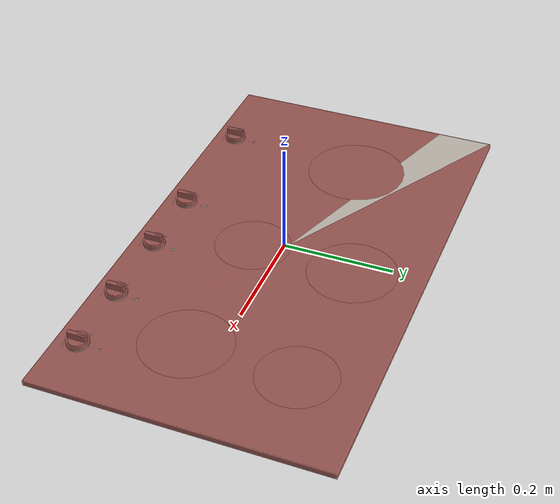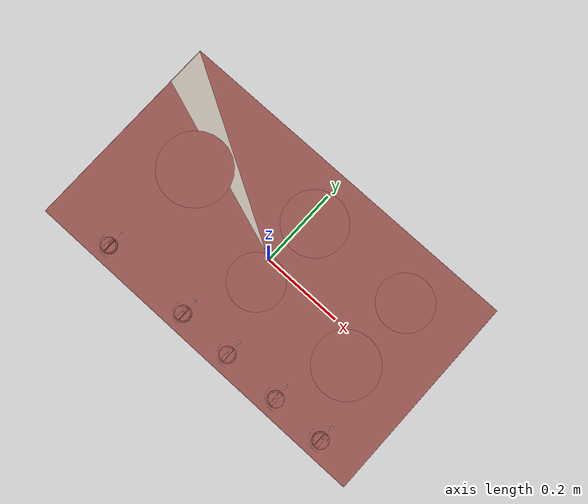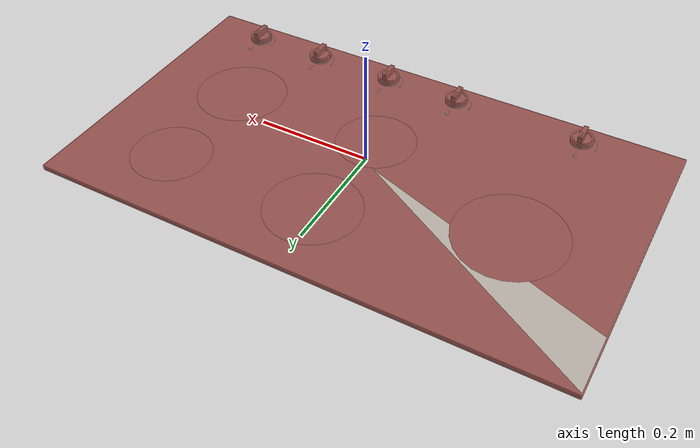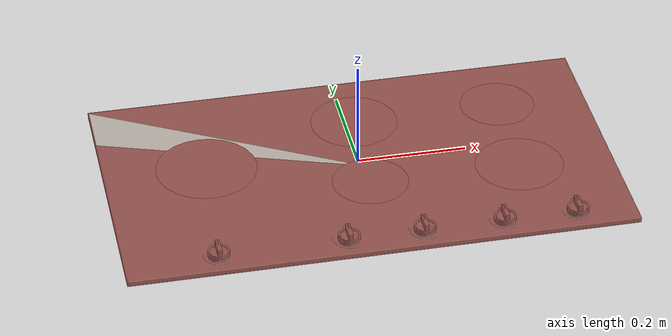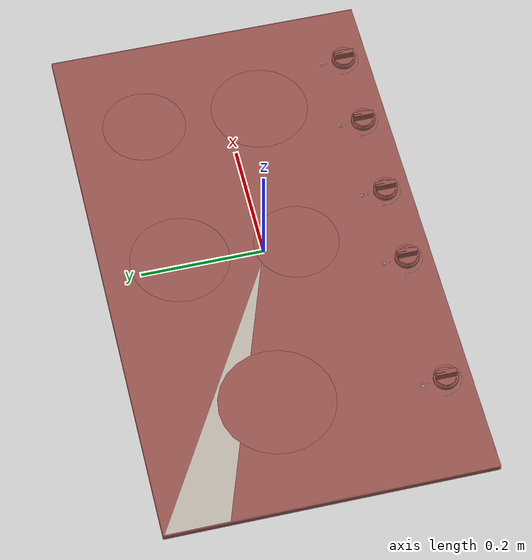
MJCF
<?xml version='1.0' encoding='UTF-8'?>
<mujoco model="model">
  <option timestep="0.002" gravity="0.0 0.0 -9.81"/>
  <compiler angle="radian"/>
  <asset>
    <mesh file="visuals/knob_front_center.obj" name="knob_front_center_vis"/>
    <mesh file="visuals/knob_front_left.obj" name="knob_front_left_vis"/>
    <mesh file="visuals/knob_front_right.obj" name="knob_front_right_vis"/>
    <mesh file="visuals/knob_rear_center.obj" name="knob_rear_center_vis"/>
    <mesh file="visuals/knob_rear_right.obj" name="knob_rear_right_vis"/>
    <mesh file="visuals/Body001.obj" name="Body001_vis"/>
    <texture file="visuals/T_BC001.png" name="Body001_material" type="2d"/>
    <material name="Body001_material" rgba="1 1 1 1.0" texture="Body001_material" shininess="0.4472135901451111" specular="3"/>
    <texture file="visuals/T_BC001.png" name="knob_front_center_material" type="2d"/>
    <material name="knob_front_center_material" rgba="1 1 1 1.0" texture="knob_front_center_material" shininess="0.4472135901451111" specular="0.3103448502657381"/>
    <texture file="visuals/T_BC001.png" name="knob_front_left_material" type="2d"/>
    <material name="knob_front_left_material" rgba="1 1 1 1.0" texture="knob_front_left_material" shininess="0.4472135901451111" specular="0.3103448502657381"/>
    <texture file="visuals/T_BC001.png" name="knob_front_right_material" type="2d"/>
    <material name="knob_front_right_material" rgba="1 1 1 1.0" texture="knob_front_right_material" shininess="0.4472135901451111" specular="0.3103448502657381"/>
    <texture file="visuals/T_BC001.png" name="knob_rear_center_material" type="2d"/>
    <material name="knob_rear_center_material" rgba="1 1 1 1.0" texture="knob_rear_center_material" shininess="0.4472135901451111" specular="0.3103448502657381"/>
    <texture file="visuals/T_BC001.png" name="knob_rear_right_material" type="2d"/>
    <material name="knob_rear_right_material" rgba="1 1 1 1.0" texture="knob_rear_right_material" shininess="0.4472135901451111" specular="0.3103448502657381"/>
  </asset>
  <default>
    <default class="visual">
      <geom conaffinity="0" contype="0" group="1" type="mesh"/>
    </default>
    <default class="collision">
      <geom group="0" rgba="0.5 0 0 0.5"/>
    </default>
    <default class="spawn">
      <geom group="0" rgba="1 1 1 0.5" contype="0" conaffinity="0"/>
      <site group="0" rgba="1 1 1 0.5"/>
    </default>
    <default class="region">
      <geom group="1" conaffinity="0" contype="0" rgba="0 1 0 0"/>
    </default>
  </default>
  <worldbody>
    <body>
      <body name="object">
        <geom mesh="Body001_vis" type="mesh" solimp="0.998 0.998 0.001" solref="0.001 1" friction="0.95 0.3 0.1" class="visual" material="Body001_material"/>
        <geom class="collision" type="box" pos="0.00000009 0.00000013 -0.01154836" size="0.45945069193840027 0.26195669174194336 0.004985496401786804" quat="1.0 0.0 0.0 0.0"/>
        <body name="knob_front_center">
          <joint axis="0.0 0.0 1.0" pos="-0.06130181 -0.22076716 0.00499672" limited="true" name="knob_front_center_joint" range="0.0 3.6651914291880923" type="hinge" damping="0.2" armature="0.01" frictionloss="1"/>
          <geom mesh="knob_front_center_vis" type="mesh" solimp="0.998 0.998 0.001" solref="0.001 1" friction="0.95 0.3 0.1" class="visual" material="knob_front_center_material"/>
          <geom class="collision" type="cylinder" pos="-0.06127563 -0.22071255 0.00053983" size="0.01997859589755535 0.004390303511172533" quat="1.0 0.0 0.0 0.0" friction="100 0.5 0.01"/>
          <geom class="collision" type="box" pos="-0.06129230 -0.22045358 0.01051093" size="0.004127315245568752 0.016763195395469666 0.00674916198477149" quat="1.0 0.0 0.0 0.0" name="knob_front_center_main" friction="100 0.5 0.01"/>
        </body>
        <body name="knob_front_left">
          <joint axis="0.0 0.0 1.0" pos="-0.29260401 -0.22076716 0.00499672" limited="true" name="knob_front_left_joint" range="0.0 3.6651914291880923" type="hinge" damping="0.2" armature="0.01" frictionloss="1"/>
          <geom mesh="knob_front_left_vis" type="mesh" solimp="0.998 0.998 0.001" solref="0.001 1" friction="0.95 0.3 0.1" class="visual" material="knob_front_left_material"/>
          <geom class="collision" type="box" pos="-0.29273961 -0.22045358 0.01051093" size="0.004127315245568752 0.016763195395469666 0.00674916198477149" quat="1.0 0.0 0.0 0.0" name="knob_front_left_main" friction="100 0.5 0.01"/>
          <geom class="collision" type="cylinder" pos="-0.29272295 -0.22071255 0.00053983" size="0.01997859589755535 0.004390303511172533" quat="1.0 0.0 0.0 0.0" friction="100 0.5 0.01"/>
        </body>
        <body name="knob_front_right">
          <joint axis="0.0 0.0 1.0" pos="0.35346871 -0.22076716 0.00499672" limited="true" name="knob_front_right_joint" range="0.0 3.6651914291880923" type="hinge" damping="0.2" armature="0.01" frictionloss="1"/>
          <geom mesh="knob_front_right_vis" type="mesh" solimp="0.998 0.998 0.001" solref="0.001 1" friction="0.95 0.3 0.1" class="visual" material="knob_front_right_material"/>
          <geom class="collision" type="cylinder" pos="0.35348847 -0.22071255 0.00053983" size="0.01997859589755535 0.004390303511172533" quat="1.0 0.0 0.0 0.0" friction="100 0.5 0.01"/>
          <geom class="collision" type="box" pos="0.35347181 -0.22045358 0.01051093" size="0.004127315245568752 0.016763195395469666 0.00674916198477149" quat="1.0 0.0 0.0 0.0" name="knob_front_right_main" friction="100 0.5 0.01"/>
        </body>
        <body name="knob_rear_center">
          <joint axis="0.0 0.0 1.0" pos="0.07493470 -0.22076716 0.00499672" limited="true" name="knob_rear_center_joint" range="0.0 3.6651914291880923" type="hinge" damping="0.2" armature="0.01" frictionloss="1"/>
          <geom mesh="knob_rear_center_vis" type="mesh" solimp="0.998 0.998 0.001" solref="0.001 1" friction="0.95 0.3 0.1" class="visual" material="knob_rear_center_material"/>
          <geom class="collision" type="cylinder" pos="0.07496758 -0.22071255 0.00053983" size="0.01997859589755535 0.004390303511172533" quat="1.0 0.0 0.0 0.0" friction="100 0.5 0.01"/>
          <geom class="collision" type="box" pos="0.07495091 -0.22045358 0.01051093" size="0.004127315245568752 0.016763195395469666 0.00674916198477149" quat="1.0 0.0 0.0 0.0" name="knob_rear_center_main" friction="100 0.5 0.01"/>
        </body>
        <body name="knob_rear_right">
          <joint axis="0.0 0.0 1.0" pos="0.22052685 -0.22076716 0.00499672" limited="true" name="knob_rear_right_joint" range="0.0 3.6651914291880923" type="hinge" damping="0.2" armature="0.01" frictionloss="1"/>
          <geom mesh="knob_rear_right_vis" type="mesh" solimp="0.998 0.998 0.001" solref="0.001 1" friction="0.95 0.3 0.1" class="visual" material="knob_rear_right_material"/>
          <geom class="collision" type="cylinder" pos="0.22003827 -0.22071255 0.00053983" size="0.01997859589755535 0.004390303511172533" quat="1.0 0.0 0.0 0.0" friction="100 0.5 0.01"/>
          <geom class="collision" type="box" pos="0.22037474 -0.22045358 0.01051093" size="0.004127315245568752 0.016763195395469666 0.00674916198477149" quat="1.0 0.0 0.0 0.0" name="knob_rear_right_main" friction="100 0.5 0.01"/>
        </body>
        <site type="cylinder" rgba="0.5 0 0 0.5" size="0.06941202282905579 0.0001" pos="0.29371115 0.13606464 -0.00656681" name="burner_on_rear_right"/>
        <site type="cylinder" rgba="0.5 0 0 0.5" size="0.08079981058835983 0.0001" pos="0.02006687 0.13393069 -0.00657702" name="burner_on_rear_center"/>
        <site type="cylinder" rgba="0.5 0 0 0.5" size="0.08101973682641983 0.0001" pos="0.28725340 -0.05903784 -0.00657589" name="burner_on_front_right"/>
        <site type="cylinder" rgba="0.5 0 0 0.5" size="0.0926307663321495 0.0001" pos="-0.27163417 0.04248064 -0.00657449" name="burner_on_front_left"/>
        <site type="cylinder" rgba="0.5 0 0 0.5" size="0.06936075538396835 0.0001" pos="0.01148154 -0.05627054 -0.00657493" name="burner_on_front_center"/>
        <site name="burner_rear_right_place_site" type="cylinder" rgba="0.5 0 0 0" size="0.06941202282905579 4.999999509891495e-05" pos="0.29371115 0.13606464 -0.00656681"/>
        <site name="burner_rear_center_place_site" type="cylinder" rgba="0.5 0 0 0" size="0.08079981058835983 4.999999509891495e-05" pos="0.02006687 0.13393069 -0.00657702"/>
        <site name="burner_front_right_place_site" type="cylinder" rgba="0.5 0 0 0" size="0.08101973682641983 4.999999873689376e-05" pos="0.28725340 -0.05903784 -0.00657589"/>
        <site name="burner_front_left_place_site" type="cylinder" rgba="0.5 0 0 0" size="0.0926307663321495 4.999999873689376e-05" pos="-0.27163417 0.04248064 -0.00657449"/>
        <site name="burner_front_center_place_site" type="cylinder" rgba="0.5 0 0 0" size="0.06936075538396835 4.999999509891495e-05" pos="0.01148154 -0.05627054 -0.00657493"/>
        <geom class="region" name="reg_main" type="box" pos="1.2500000001747225e-07 1.0000000000287557e-07 -0.01154835" size="0.460450725 0.26295669 0.0059854700000000005"/>
      </body>
    </body>
  </worldbody>
  <actuator>
    <motor name="knob_front_center_joint_actuator" joint="knob_front_center_joint" gear="10"/>
    <motor name="knob_front_left_joint_actuator" joint="knob_front_left_joint" gear="10"/>
    <motor name="knob_front_right_joint_actuator" joint="knob_front_right_joint" gear="10"/>
    <motor name="knob_rear_center_joint_actuator" joint="knob_rear_center_joint" gear="10"/>
    <motor name="knob_rear_right_joint_actuator" joint="knob_rear_right_joint" gear="10"/>
  </actuator>
</mujoco>
